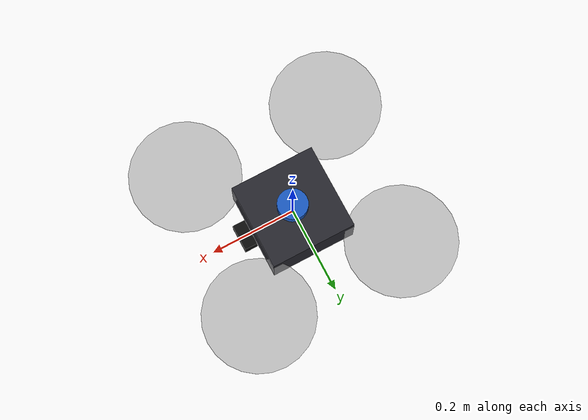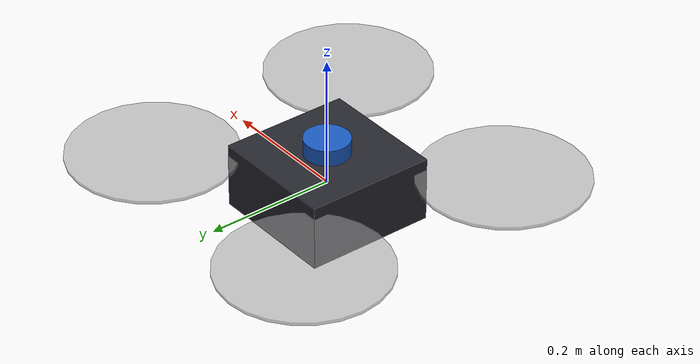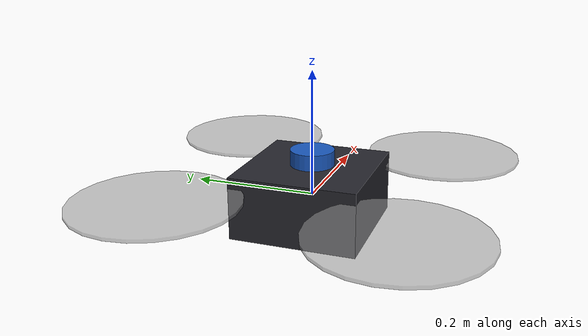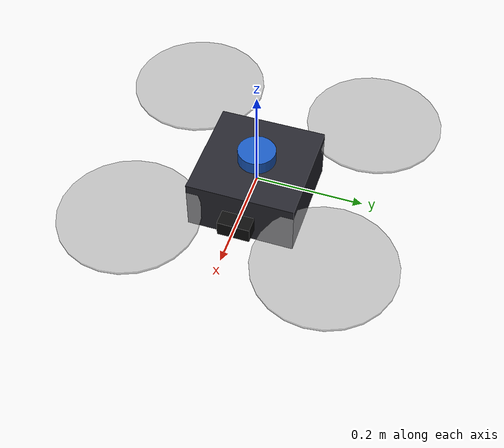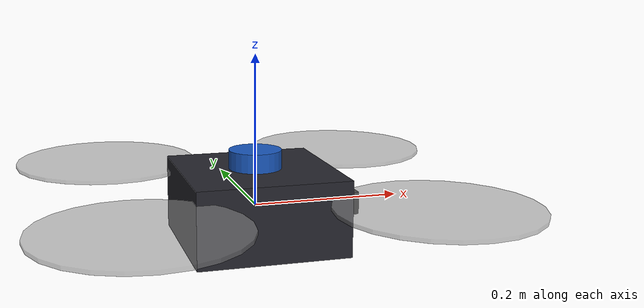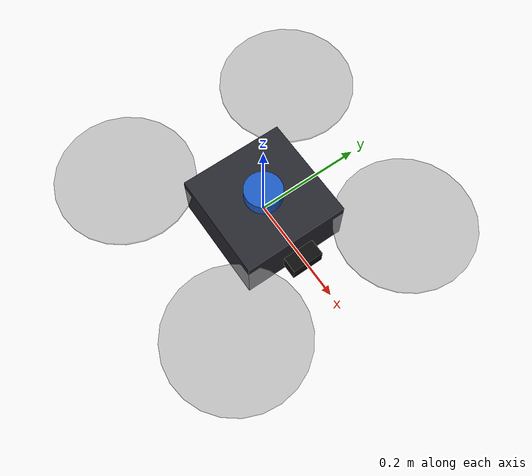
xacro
<?xml version="1.0"?>
<robot xmlns:xacro="http://www.ros.org/wiki/xacro" name="garudanex">

  <xacro:include filename="$(find garudanex_description)/urdf/properties.xacro"/>
  <xacro:include filename="$(find garudanex_description)/urdf/inertial_macros.xacro"/>

  <material name="garuda_dark"><color rgba="0.15 0.15 0.18 1.0"/></material>
  <material name="rotor_grey"><color rgba="0.60 0.60 0.60 0.55"/></material>
  <material name="lidar_blue"><color rgba="0.10 0.35 0.75 1.0"/></material>
  <material name="cam_black"><color rgba="0.05 0.05 0.05 1.0"/></material>

  <link name="${base_frame}">
    <visual>
      <origin xyz="0 0 0" rpy="0 0 0"/>
      <geometry><box size="${body_length} ${body_width} ${body_height}"/></geometry>
      <material name="garuda_dark"/>
    </visual>
    <collision>
      <origin xyz="0 0 0" rpy="0 0 0"/>
      <geometry><box size="${body_length} ${body_width} ${body_height}"/></geometry>
    </collision>
  </link>

  <!-- ================= ROTORS =================
       PX4 quad-X numbering: 1 front-right CCW, 2 rear-left CCW,
       3 front-left CW, 4 rear-right CW. Angles from +X, CCW. -->
  <xacro:macro name="rotor" params="number angle_deg spin_dir">
    <xacro:property name="a" value="${angle_deg * PI / 180.0}"/>
    <link name="rotor_${number}_link">
      <visual>
        <geometry><cylinder radius="${rotor_radius}" length="0.005"/></geometry>
        <material name="rotor_grey"/>
      </visual>
      <xacro:inertial_cylinder mass="${rotor_mass}" length="0.005" radius="${rotor_radius}">
        <origin xyz="0 0 0" rpy="0 0 0"/>
      </xacro:inertial_cylinder>
    </link>
    <joint name="rotor_${number}_joint" type="fixed">
      <parent link="${base_frame}"/>
      <child  link="rotor_${number}_link"/>
      <origin xyz="${arm_length*cos(a)} ${arm_length*sin(a)} 0.03" rpy="0 0 0"/>
    </joint>
  </xacro:macro>

  <xacro:rotor number="1" angle_deg="45"  spin_dir="1"/>
  <xacro:rotor number="2" angle_deg="225" spin_dir="1"/>
  <xacro:rotor number="3" angle_deg="135" spin_dir="-1"/>
  <xacro:rotor number="4" angle_deg="315" spin_dir="-1"/>

  <!-- ================= 2D LIDAR ================= -->
  <link name="${lidar_frame}">
    <visual>
      <geometry><cylinder radius="${lidar_radius}" length="${lidar_height}"/></geometry>
      <material name="lidar_blue"/>
    </visual>
    <collision>
      <geometry><cylinder radius="${lidar_radius}" length="${lidar_height}"/></geometry>
    </collision>
    <xacro:inertial_cylinder mass="${lidar_mass}"
                             length="${lidar_height}" radius="${lidar_radius}">
      <origin xyz="0 0 0" rpy="0 0 0"/>
    </xacro:inertial_cylinder>
  </link>
  <joint name="lidar_joint" type="fixed">
    <parent link="${base_frame}"/>
    <child  link="${lidar_frame}"/>
    <origin xyz="${lidar_x} ${lidar_y} ${lidar_z}"
            rpy="${lidar_roll} ${lidar_pitch} ${lidar_yaw}"/>
  </joint>

  <!-- ================= IMU ================= -->
  <link name="${imu_frame}"/>
  <joint name="imu_joint" type="fixed">
    <parent link="${base_frame}"/>
    <child  link="${imu_frame}"/>
    <origin xyz="${imu_x} ${imu_y} ${imu_z}" rpy="0 0 0"/>
  </joint>

  <link name="${camera_frame}">
    <visual>
      <geometry><box size="0.03 0.06 0.03"/></geometry>
      <material name="cam_black"/>
    </visual>
    <xacro:inertial_box mass="0.05" x="0.03" y="0.06" z="0.03">
      <origin xyz="0 0 0" rpy="0 0 0"/>
    </xacro:inertial_box>
  </link>
  <joint name="camera_joint" type="fixed">
    <parent link="${base_frame}"/>
    <child  link="${camera_frame}"/>
    <origin xyz="${cam_x} ${cam_y} ${cam_z}" rpy="0 0 0"/>
  </joint>

  <link name="${camera_frame}_optical"/>
  <joint name="camera_optical_joint" type="fixed">
    <parent link="${camera_frame}"/>
    <child  link="${camera_frame}_optical"/>
    <origin xyz="0 0 0" rpy="${-PI/2} 0 ${-PI/2}"/>
  </joint>

  <!-- ================= GPS ================= -->
  <link name="${gps_frame}"/>
  <joint name="gps_joint" type="fixed">
    <parent link="${base_frame}"/>
    <child  link="${gps_frame}"/>
    <origin xyz="0 0 0.08" rpy="0 0 0"/>
  </joint>

  <link name="base_link_frd"/>
  <joint name="base_link_frd_joint" type="fixed">
    <parent link="${base_frame}"/>
    <child  link="base_link_frd"/>
    <origin xyz="0 0 0" rpy="${PI} 0 0"/>
  </joint>

</robot>

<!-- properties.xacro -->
<robot xmlns:xacro="http://www.ros.org/wiki/xacro">
  <!-- ===== CONSTANTS ===== -->
  <xacro:property name="PI" value="3.14159265359"/>

  <!-- ===== AIRFRAME (x500 class) ===== -->
  <xacro:property name="body_mass"    value="1.5"/>
  <xacro:property name="body_length"  value="0.20"/>
  <xacro:property name="body_width"   value="0.20"/>
  <xacro:property name="body_height"  value="0.10"/>
  <xacro:property name="arm_length"   value="0.25"/>
  <xacro:property name="rotor_radius" value="0.127"/>
  <xacro:property name="rotor_mass"   value="0.016"/>

  <!-- Nav2 inscribed radius: prop envelope + safety margin -->
  <xacro:property name="robot_radius" value="0.45"/>

  <xacro:property name="lidar_x"         value="0.0"/>
  <xacro:property name="lidar_y"         value="0.0"/>
  <xacro:property name="lidar_z"         value="0.055"/>
  <xacro:property name="lidar_roll"      value="0.0"/>
  <xacro:property name="lidar_pitch"     value="0.0"/>
  <xacro:property name="lidar_yaw"       value="0.0"/>
  <xacro:property name="lidar_radius"    value="0.035"/>
  <xacro:property name="lidar_height"    value="0.04"/>
  <xacro:property name="lidar_mass"      value="0.17"/>
  <xacro:property name="lidar_min_range" value="0.1"/>
  <xacro:property name="lidar_max_range" value="30.0"/>
  <xacro:property name="lidar_samples"   value="1080"/>
  <xacro:property name="lidar_fov_half"  value="2.356195"/>

  <!-- ===== IMU ===== -->
  <xacro:property name="imu_x" value="0.0"/>
  <xacro:property name="imu_y" value="0.0"/>
  <xacro:property name="imu_z" value="0.0"/>

  <!-- ===== FORWARD CAMERA ===== -->
  <xacro:property name="cam_x" value="0.12"/>
  <xacro:property name="cam_y" value="0.0"/>
  <xacro:property name="cam_z" value="0.0"/>

  <!-- ===== FRAME NAMES (single source of truth) ===== -->
  <xacro:property name="base_frame"   value="base_link"/>
  <xacro:property name="lidar_frame"  value="lidar_link"/>
  <xacro:property name="imu_frame"    value="imu_link"/>
  <xacro:property name="camera_frame" value="camera_link"/>
  <xacro:property name="gps_frame"    value="gps_link"/>
</robot>

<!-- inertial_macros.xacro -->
<robot xmlns:xacro="http://www.ros.org/wiki/xacro">

  <xacro:macro name="inertial_box" params="mass x y z *origin">
    <inertial>
      <xacro:insert_block name="origin"/>
      <mass value="${mass}"/>
      <inertia
        ixx="${(mass/12.0)*(y*y + z*z)}" ixy="0.0" ixz="0.0"
        iyy="${(mass/12.0)*(x*x + z*z)}" iyz="0.0"
        izz="${(mass/12.0)*(x*x + y*y)}"/>
    </inertial>
  </xacro:macro>

  <xacro:macro name="inertial_cylinder" params="mass length radius *origin">
    <inertial>
      <xacro:insert_block name="origin"/>
      <mass value="${mass}"/>
      <inertia
        ixx="${(mass/12.0)*(3.0*radius*radius + length*length)}" ixy="0.0" ixz="0.0"
        iyy="${(mass/12.0)*(3.0*radius*radius + length*length)}" iyz="0.0"
        izz="${(mass/2.0)*(radius*radius)}"/>
    </inertial>
  </xacro:macro>

  <xacro:macro name="inertial_sphere" params="mass radius *origin">
    <inertial>
      <xacro:insert_block name="origin"/>
      <mass value="${mass}"/>
      <inertia
        ixx="${(2.0/5.0)*mass*radius*radius}" ixy="0.0" ixz="0.0"
        iyy="${(2.0/5.0)*mass*radius*radius}" iyz="0.0"
        izz="${(2.0/5.0)*mass*radius*radius}"/>
    </inertial>
  </xacro:macro>
</robot>
